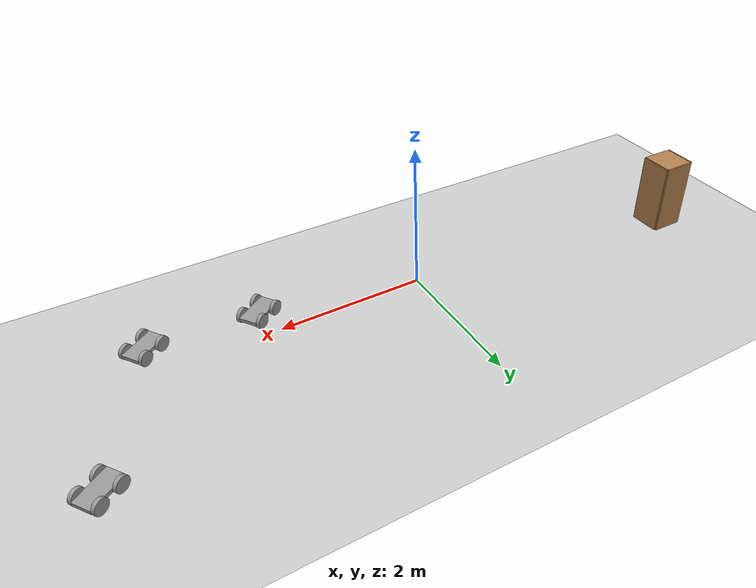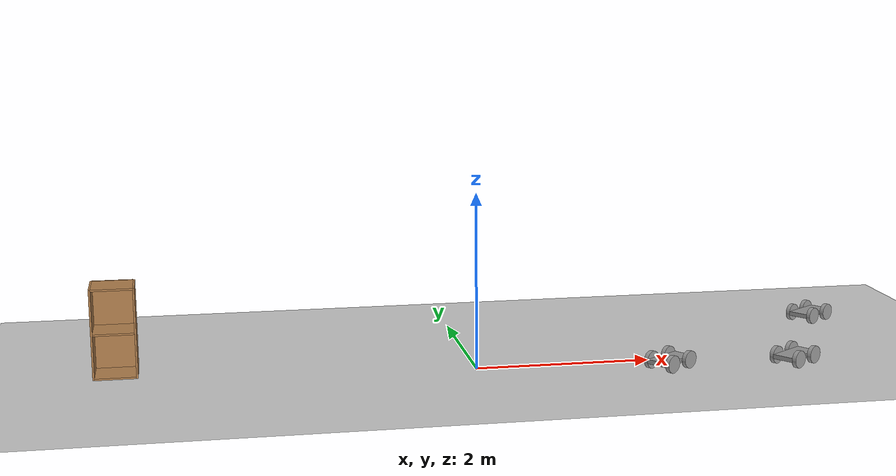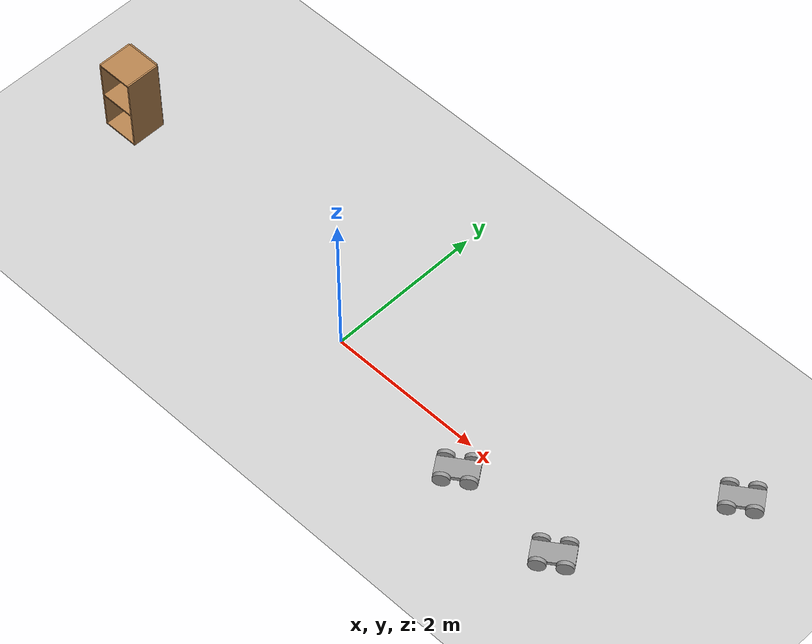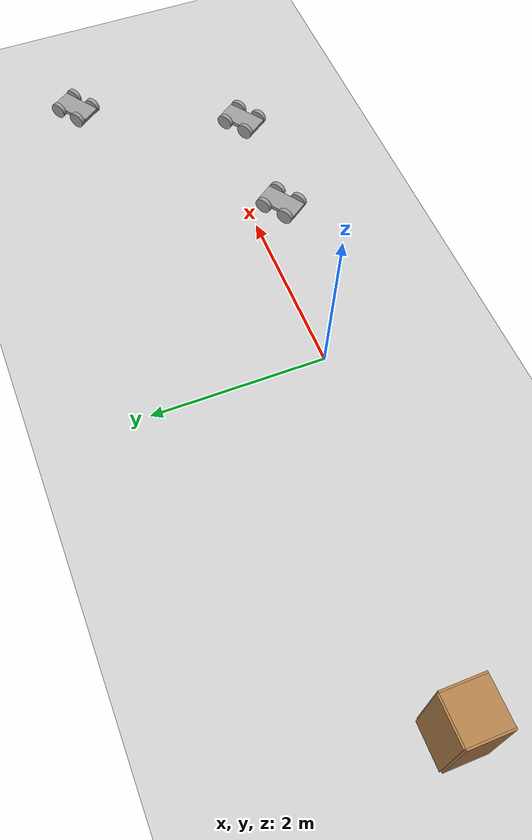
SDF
<sdf version="1.6">
 <world name="default">
  <model name="ground_plane">
   <static>1</static>
   <link name="link">
    <collision name="collision">
     <geometry><plane><normal>0 0 1</normal><size>100 100</size></plane></geometry>
     <surface>
      <contact><collide_bitmask>65535</collide_bitmask></contact>
      <friction><ode><mu>100</mu><mu2>50</mu2></ode></friction>
     </surface>
    </collision>
    <visual name="visual">
     <cast_shadows>0</cast_shadows>
     <geometry><plane><normal>0 0 1</normal><size>100 100</size></plane></geometry>
     <material>
      <script><uri>file://media/materials/scripts/gazebo.material</uri><name>Gazebo/Grey</name></script>
     </material>
    </visual>
   </link>
  </model>
  <model name="4_wheeled_platform_clone_clone_1">
   <link name="link_2">
    <inertial>
     <mass>1</mass>
     <inertia>
      <ixx>0.166667</ixx>
      <ixy>0</ixy>
      <ixz>0</ixz>
      <iyy>0.166667</iyy>
      <iyz>0</iyz>
      <izz>0.166667</izz>
     </inertia>
    </inertial>
    <pose>0.211313 0.477903 0 0 -0 0</pose>
    <visual name="visual">
     <geometry><box><size>0.5 0.25 0.05</size></box></geometry>
     <material>
      <lighting>1</lighting>
      <script><uri>file://media/materials/scripts/gazebo.material</uri><name>Gazebo/Grey</name></script>
      <shader type="vertex"><normal_map>__default__</normal_map></shader>
      <ambient>0.3 0.3 0.3 1</ambient>
      <diffuse>0.7 0.7 0.7 1</diffuse>
      <specular>0.01 0.01 0.01 1</specular>
      <emissive>0 0 0 1</emissive>
     </material>
    </visual>
    <collision name="collision">
     <geometry><box><size>0.5 0.25 0.05</size></box></geometry>
     <surface>
      <friction>
       <ode><mu>1</mu><mu2>1</mu2><fdir1>0 0 0</fdir1><slip1>0</slip1><slip2>0</slip2></ode>
       <torsional>
        <coefficient>1</coefficient>
        <patch_radius>0</patch_radius>
        <surface_radius>0</surface_radius>
        <use_patch_radius>1</use_patch_radius>
        <ode><slip>0</slip></ode>
       </torsional>
      </friction>
      <bounce><restitution_coefficient>0</restitution_coefficient><threshold>1e+06</threshold></bounce>
      <contact>
       <collide_without_contact>0</collide_without_contact>
       <collide_without_contact_bitmask>1</collide_without_contact_bitmask>
       <collide_bitmask>1</collide_bitmask>
       <ode>
        <soft_cfm>0</soft_cfm>
        <soft_erp>0.2</soft_erp>
        <kp>1e+13</kp>
        <kd>1</kd>
        <max_vel>0.01</max_vel>
        <min_depth>0</min_depth>
       </ode>
       <bullet>
        <split_impulse>1</split_impulse>
        <split_impulse_penetration_threshold>-0.01</split_impulse_penetration_threshold>
        <soft_cfm>0</soft_cfm>
        <soft_erp>0.2</soft_erp>
        <kp>1e+13</kp>
        <kd>1</kd>
       </bullet>
      </contact>
     </surface>
    </collision>
   </link>
   <link name="link_3">
    <inertial>
     <mass>1</mass>
     <inertia><ixx>0.145833</ixx><ixy>0</ixy><ixz>0</ixz><iyy>0.145833</iyy><iyz>0</iyz><izz>0.125</izz></inertia>
    </inertial>
    <pose>0.061313 0.327903 0 1.5707 -0 0</pose>
    <visual name="visual">
     <geometry><cylinder><radius>0.1</radius><length>0.05</length></cylinder></geometry>
     <material>
      <lighting>1</lighting>
      <script><uri>file://media/materials/scripts/gazebo.material</uri><name>Gazebo/Grey</name></script>
      <shader type="vertex"><normal_map>__default__</normal_map></shader>
      <ambient>0.3 0.3 0.3 1</ambient>
      <diffuse>0.7 0.7 0.7 1</diffuse>
      <specular>0.01 0.01 0.01 1</specular>
      <emissive>0 0 0 1</emissive>
     </material>
    </visual>
    <collision name="collision">
     <geometry><cylinder><radius>0.1</radius><length>0.05</length></cylinder></geometry>
     <surface>
      <friction>
       <ode><mu>1</mu><mu2>1</mu2><fdir1>0 0 0</fdir1><slip1>0</slip1><slip2>0</slip2></ode>
       <torsional>
        <coefficient>1</coefficient>
        <patch_radius>0</patch_radius>
        <surface_radius>0</surface_radius>
        <use_patch_radius>1</use_patch_radius>
        <ode><slip>0</slip></ode>
       </torsional>
      </friction>
      <bounce><restitution_coefficient>0</restitution_coefficient><threshold>1e+06</threshold></bounce>
      <contact>
       <collide_without_contact>0</collide_without_contact>
       <collide_without_contact_bitmask>1</collide_without_contact_bitmask>
       <collide_bitmask>1</collide_bitmask>
       <ode>
        <soft_cfm>0</soft_cfm>
        <soft_erp>0.2</soft_erp>
        <kp>1e+13</kp>
        <kd>1</kd>
        <max_vel>0.01</max_vel>
        <min_depth>0</min_depth>
       </ode>
       <bullet>
        <split_impulse>1</split_impulse>
        <split_impulse_penetration_threshold>-0.01</split_impulse_penetration_threshold>
        <soft_cfm>0</soft_cfm>
        <soft_erp>0.2</soft_erp>
        <kp>1e+13</kp>
        <kd>1</kd>
       </bullet>
      </contact>
     </surface>
    </collision>
   </link>
   <link name="link_3_clone">
    <inertial>
     <mass>1</mass>
     <inertia><ixx>0.145833</ixx><ixy>0</ixy><ixz>0</ixz><iyy>0.145833</iyy><iyz>0</iyz><izz>0.125</izz></inertia>
    </inertial>
    <pose>0.061313 0.627903 0 1.5707 -0 0</pose>
    <visual name="visual">
     <geometry><cylinder><radius>0.1</radius><length>0.05</length></cylinder></geometry>
     <material>
      <lighting>1</lighting>
      <script><uri>file://media/materials/scripts/gazebo.material</uri><name>Gazebo/Grey</name></script>
      <shader type="vertex"><normal_map>__default__</normal_map></shader>
      <ambient>0.3 0.3 0.3 1</ambient>
      <diffuse>0.7 0.7 0.7 1</diffuse>
      <specular>0.01 0.01 0.01 1</specular>
      <emissive>0 0 0 1</emissive>
     </material>
    </visual>
    <collision name="collision">
     <geometry><cylinder><radius>0.1</radius><length>0.05</length></cylinder></geometry>
     <surface>
      <friction>
       <ode><mu>1</mu><mu2>1</mu2><fdir1>0 0 0</fdir1><slip1>0</slip1><slip2>0</slip2></ode>
       <torsional>
        <coefficient>1</coefficient>
        <patch_radius>0</patch_radius>
        <surface_radius>0</surface_radius>
        <use_patch_radius>1</use_patch_radius>
        <ode><slip>0</slip></ode>
       </torsional>
      </friction>
      <bounce><restitution_coefficient>0</restitution_coefficient><threshold>1e+06</threshold></bounce>
      <contact>
       <collide_without_contact>0</collide_without_contact>
       <collide_without_contact_bitmask>1</collide_without_contact_bitmask>
       <collide_bitmask>1</collide_bitmask>
       <ode>
        <soft_cfm>0</soft_cfm>
        <soft_erp>0.2</soft_erp>
        <kp>1e+13</kp>
        <kd>1</kd>
        <max_vel>0.01</max_vel>
        <min_depth>0</min_depth>
       </ode>
       <bullet>
        <split_impulse>1</split_impulse>
        <split_impulse_penetration_threshold>-0.01</split_impulse_penetration_threshold>
        <soft_cfm>0</soft_cfm>
        <soft_erp>0.2</soft_erp>
        <kp>1e+13</kp>
        <kd>1</kd>
       </bullet>
      </contact>
     </surface>
    </collision>
   </link>
   <link name="link_3_clone_0">
    <inertial>
     <mass>1</mass>
     <inertia><ixx>0.145833</ixx><ixy>0</ixy><ixz>0</ixz><iyy>0.145833</iyy><iyz>0</iyz><izz>0.125</izz></inertia>
    </inertial>
    <pose>0.361313 0.627903 0 1.5707 -0 0</pose>
    <visual name="visual">
     <geometry><cylinder><radius>0.1</radius><length>0.05</length></cylinder></geometry>
     <material>
      <lighting>1</lighting>
      <script><uri>file://media/materials/scripts/gazebo.material</uri><name>Gazebo/Grey</name></script>
      <shader type="vertex"><normal_map>__default__</normal_map></shader>
      <ambient>0.3 0.3 0.3 1</ambient>
      <diffuse>0.7 0.7 0.7 1</diffuse>
      <specular>0.01 0.01 0.01 1</specular>
      <emissive>0 0 0 1</emissive>
     </material>
    </visual>
    <collision name="collision">
     <geometry><cylinder><radius>0.1</radius><length>0.05</length></cylinder></geometry>
     <surface>
      <friction>
       <ode><mu>1</mu><mu2>1</mu2><fdir1>0 0 0</fdir1><slip1>0</slip1><slip2>0</slip2></ode>
       <torsional>
        <coefficient>1</coefficient>
        <patch_radius>0</patch_radius>
        <surface_radius>0</surface_radius>
        <use_patch_radius>1</use_patch_radius>
        <ode><slip>0</slip></ode>
       </torsional>
      </friction>
      <bounce><restitution_coefficient>0</restitution_coefficient><threshold>1e+06</threshold></bounce>
      <contact>
       <collide_without_contact>0</collide_without_contact>
       <collide_without_contact_bitmask>1</collide_without_contact_bitmask>
       <collide_bitmask>1</collide_bitmask>
       <ode>
        <soft_cfm>0</soft_cfm>
        <soft_erp>0.2</soft_erp>
        <kp>1e+13</kp>
        <kd>1</kd>
        <max_vel>0.01</max_vel>
        <min_depth>0</min_depth>
       </ode>
       <bullet>
        <split_impulse>1</split_impulse>
        <split_impulse_penetration_threshold>-0.01</split_impulse_penetration_threshold>
        <soft_cfm>0</soft_cfm>
        <soft_erp>0.2</soft_erp>
        <kp>1e+13</kp>
        <kd>1</kd>
       </bullet>
      </contact>
     </surface>
    </collision>
   </link>
   <link name="link_3_clone_1">
    <inertial>
     <mass>1</mass>
     <inertia><ixx>0.145833</ixx><ixy>0</ixy><ixz>0</ixz><iyy>0.145833</iyy><iyz>0</iyz><izz>0.125</izz></inertia>
    </inertial>
    <pose>0.361313 0.327903 0 1.5707 -0 0</pose>
    <visual name="visual">
     <geometry><cylinder><radius>0.1</radius><length>0.05</length></cylinder></geometry>
     <material>
      <lighting>1</lighting>
      <script><uri>file://media/materials/scripts/gazebo.material</uri><name>Gazebo/Grey</name></script>
      <shader type="vertex"><normal_map>__default__</normal_map></shader>
      <ambient>0.3 0.3 0.3 1</ambient>
      <diffuse>0.7 0.7 0.7 1</diffuse>
      <specular>0.01 0.01 0.01 1</specular>
      <emissive>0 0 0 1</emissive>
     </material>
    </visual>
    <collision name="collision">
     <geometry><cylinder><radius>0.1</radius><length>0.05</length></cylinder></geometry>
     <surface>
      <friction>
       <ode><mu>1</mu><mu2>1</mu2><fdir1>0 0 0</fdir1><slip1>0</slip1><slip2>0</slip2></ode>
       <torsional>
        <coefficient>1</coefficient>
        <patch_radius>0</patch_radius>
        <surface_radius>0</surface_radius>
        <use_patch_radius>1</use_patch_radius>
        <ode><slip>0</slip></ode>
       </torsional>
      </friction>
      <bounce><restitution_coefficient>0</restitution_coefficient><threshold>1e+06</threshold></bounce>
      <contact>
       <collide_without_contact>0</collide_without_contact>
       <collide_without_contact_bitmask>1</collide_without_contact_bitmask>
       <collide_bitmask>1</collide_bitmask>
       <ode>
        <soft_cfm>0</soft_cfm>
        <soft_erp>0.2</soft_erp>
        <kp>1e+13</kp>
        <kd>1</kd>
        <max_vel>0.01</max_vel>
        <min_depth>0</min_depth>
       </ode>
       <bullet>
        <split_impulse>1</split_impulse>
        <split_impulse_penetration_threshold>-0.01</split_impulse_penetration_threshold>
        <soft_cfm>0</soft_cfm>
        <soft_erp>0.2</soft_erp>
        <kp>1e+13</kp>
        <kd>1</kd>
       </bullet>
      </contact>
     </surface>
    </collision>
   </link>
   <joint name="link_2_JOINT_6" type="revolute">
    <parent>link_2</parent>
    <child>link_3</child>
    <axis>
     <xyz>0 0 1</xyz>
     <use_parent_model_frame>0</use_parent_model_frame>
     <limit>
      <lower>-1.79769e+308</lower>
      <upper>1.79769e+308</upper>
      <effort>-1</effort>
      <velocity>-1</velocity>
     </limit>
     <dynamics>
      <spring_reference>0</spring_reference>
      <spring_stiffness>0</spring_stiffness>
      <damping>0</damping>
     </dynamics>
    </axis>
    <physics>
     <ode><limit><cfm>0</cfm><erp>0.2</erp></limit><suspension><cfm>0</cfm><erp>0.2</erp></suspension></ode>
    </physics>
   </joint>
   <joint name="link_2_JOINT_7" type="revolute">
    <parent>link_2</parent>
    <child>link_3_clone</child>
    <axis>
     <xyz>0 0 1</xyz>
     <use_parent_model_frame>0</use_parent_model_frame>
     <limit>
      <lower>-1.79769e+308</lower>
      <upper>1.79769e+308</upper>
      <effort>-1</effort>
      <velocity>-1</velocity>
     </limit>
     <dynamics>
      <spring_reference>0</spring_reference>
      <spring_stiffness>0</spring_stiffness>
      <damping>0</damping>
     </dynamics>
    </axis>
    <physics>
     <ode><limit><cfm>0</cfm><erp>0.2</erp></limit><suspension><cfm>0</cfm><erp>0.2</erp></suspension></ode>
    </physics>
   </joint>
   <joint name="link_2_JOINT_8" type="revolute">
    <parent>link_2</parent>
    <child>link_3_clone_0</child>
    <axis>
     <xyz>1 0 0</xyz>
     <use_parent_model_frame>0</use_parent_model_frame>
     <limit>
      <lower>-1.79769e+308</lower>
      <upper>1.79769e+308</upper>
      <effort>-1</effort>
      <velocity>-1</velocity>
     </limit>
     <dynamics>
      <spring_reference>0</spring_reference>
      <spring_stiffness>0</spring_stiffness>
      <damping>0</damping>
     </dynamics>
    </axis>
    <physics>
     <ode><limit><cfm>0</cfm><erp>0.2</erp></limit><suspension><cfm>0</cfm><erp>0.2</erp></suspension></ode>
    </physics>
   </joint>
   <joint name="link_2_JOINT_9" type="revolute">
    <parent>link_2</parent>
    <child>link_3_clone_1</child>
    <axis>
     <xyz>1 0 0</xyz>
     <use_parent_model_frame>0</use_parent_model_frame>
     <limit>
      <lower>-1.79769e+308</lower>
      <upper>1.79769e+308</upper>
      <effort>-1</effort>
      <velocity>-1</velocity>
     </limit>
     <dynamics>
      <spring_reference>0</spring_reference>
      <spring_stiffness>0</spring_stiffness>
      <damping>0</damping>
     </dynamics>
    </axis>
    <physics>
     <ode><limit><cfm>0</cfm><erp>0.2</erp></limit><suspension><cfm>0</cfm><erp>0.2</erp></suspension></ode>
    </physics>
   </joint>
   <static>0</static>
   <pose>2.24919 -0.888164 0.099996 -0 8e-06 0.606025</pose>
  </model>
  <model name="4_wheeled_platform_clone_clone_2">
   <link name="link_2">
    <inertial>
     <mass>1</mass>
     <inertia>
      <ixx>0.166667</ixx>
      <ixy>0</ixy>
      <ixz>0</ixz>
      <iyy>0.166667</iyy>
      <iyz>0</iyz>
      <izz>0.166667</izz>
     </inertia>
    </inertial>
    <pose>0.211313 0.477903 0 0 -0 0</pose>
    <visual name="visual">
     <geometry><box><size>0.5 0.25 0.05</size></box></geometry>
     <material>
      <lighting>1</lighting>
      <script><uri>file://media/materials/scripts/gazebo.material</uri><name>Gazebo/Grey</name></script>
      <shader type="vertex"><normal_map>__default__</normal_map></shader>
      <ambient>0.3 0.3 0.3 1</ambient>
      <diffuse>0.7 0.7 0.7 1</diffuse>
      <specular>0.01 0.01 0.01 1</specular>
      <emissive>0 0 0 1</emissive>
     </material>
    </visual>
    <collision name="collision">
     <geometry><box><size>0.5 0.25 0.05</size></box></geometry>
     <surface>
      <friction>
       <ode><mu>1</mu><mu2>1</mu2><fdir1>0 0 0</fdir1><slip1>0</slip1><slip2>0</slip2></ode>
       <torsional>
        <coefficient>1</coefficient>
        <patch_radius>0</patch_radius>
        <surface_radius>0</surface_radius>
        <use_patch_radius>1</use_patch_radius>
        <ode><slip>0</slip></ode>
       </torsional>
      </friction>
      <bounce><restitution_coefficient>0</restitution_coefficient><threshold>1e+06</threshold></bounce>
      <contact>
       <collide_without_contact>0</collide_without_contact>
       <collide_without_contact_bitmask>1</collide_without_contact_bitmask>
       <collide_bitmask>1</collide_bitmask>
       <ode>
        <soft_cfm>0</soft_cfm>
        <soft_erp>0.2</soft_erp>
        <kp>1e+13</kp>
        <kd>1</kd>
        <max_vel>0.01</max_vel>
        <min_depth>0</min_depth>
       </ode>
       <bullet>
        <split_impulse>1</split_impulse>
        <split_impulse_penetration_threshold>-0.01</split_impulse_penetration_threshold>
        <soft_cfm>0</soft_cfm>
        <soft_erp>0.2</soft_erp>
        <kp>1e+13</kp>
        <kd>1</kd>
       </bullet>
      </contact>
     </surface>
    </collision>
   </link>
   <link name="link_3">
    <inertial>
     <mass>1</mass>
     <inertia><ixx>0.145833</ixx><ixy>0</ixy><ixz>0</ixz><iyy>0.145833</iyy><iyz>0</iyz><izz>0.125</izz></inertia>
    </inertial>
    <pose>0.061313 0.327903 0 1.5707 -0 0</pose>
    <visual name="visual">
     <geometry><cylinder><radius>0.1</radius><length>0.05</length></cylinder></geometry>
     <material>
      <lighting>1</lighting>
      <script><uri>file://media/materials/scripts/gazebo.material</uri><name>Gazebo/Grey</name></script>
      <shader type="vertex"><normal_map>__default__</normal_map></shader>
      <ambient>0.3 0.3 0.3 1</ambient>
      <diffuse>0.7 0.7 0.7 1</diffuse>
      <specular>0.01 0.01 0.01 1</specular>
      <emissive>0 0 0 1</emissive>
     </material>
    </visual>
    <collision name="collision">
     <geometry><cylinder><radius>0.1</radius><length>0.05</length></cylinder></geometry>
     <surface>
      <friction>
       <ode><mu>1</mu><mu2>1</mu2><fdir1>0 0 0</fdir1><slip1>0</slip1><slip2>0</slip2></ode>
       <torsional>
        <coefficient>1</coefficient>
        <patch_radius>0</patch_radius>
        <surface_radius>0</surface_radius>
        <use_patch_radius>1</use_patch_radius>
        <ode><slip>0</slip></ode>
       </torsional>
      </friction>
      <bounce><restitution_coefficient>0</restitution_coefficient><threshold>1e+06</threshold></bounce>
      <contact>
       <collide_without_contact>0</collide_without_contact>
       <collide_without_contact_bitmask>1</collide_without_contact_bitmask>
       <collide_bitmask>1</collide_bitmask>
       <ode>
        <soft_cfm>0</soft_cfm>
        <soft_erp>0.2</soft_erp>
        <kp>1e+13</kp>
        <kd>1</kd>
        <max_vel>0.01</max_vel>
        <min_depth>0</min_depth>
       </ode>
       <bullet>
        <split_impulse>1</split_impulse>
        <split_impulse_penetration_threshold>-0.01</split_impulse_penetration_threshold>
        <soft_cfm>0</soft_cfm>
        <soft_erp>0.2</soft_erp>
        <kp>1e+13</kp>
        <kd>1</kd>
       </bullet>
      </contact>
     </surface>
    </collision>
   </link>
   <link name="link_3_clone">
    <inertial>
     <mass>1</mass>
     <inertia><ixx>0.145833</ixx><ixy>0</ixy><ixz>0</ixz><iyy>0.145833</iyy><iyz>0</iyz><izz>0.125</izz></inertia>
    </inertial>
    <pose>0.061313 0.627903 0 1.5707 -0 0</pose>
    <visual name="visual">
     <geometry><cylinder><radius>0.1</radius><length>0.05</length></cylinder></geometry>
     <material>
      <lighting>1</lighting>
      <script><uri>file://media/materials/scripts/gazebo.material</uri><name>Gazebo/Grey</name></script>
      <shader type="vertex"><normal_map>__default__</normal_map></shader>
      <ambient>0.3 0.3 0.3 1</ambient>
      <diffuse>0.7 0.7 0.7 1</diffuse>
      <specular>0.01 0.01 0.01 1</specular>
      <emissive>0 0 0 1</emissive>
     </material>
    </visual>
    <collision name="collision">
     <geometry><cylinder><radius>0.1</radius><length>0.05</length></cylinder></geometry>
     <surface>
      <friction>
       <ode><mu>1</mu><mu2>1</mu2><fdir1>0 0 0</fdir1><slip1>0</slip1><slip2>0</slip2></ode>
       <torsional>
        <coefficient>1</coefficient>
        <patch_radius>0</patch_radius>
        <surface_radius>0</surface_radius>
        <use_patch_radius>1</use_patch_radius>
        <ode><slip>0</slip></ode>
       </torsional>
      </friction>
      <bounce><restitution_coefficient>0</restitution_coefficient><threshold>1e+06</threshold></bounce>
      <contact>
       <collide_without_contact>0</collide_without_contact>
       <collide_without_contact_bitmask>1</collide_without_contact_bitmask>
       <collide_bitmask>1</collide_bitmask>
       <ode>
        <soft_cfm>0</soft_cfm>
        <soft_erp>0.2</soft_erp>
        <kp>1e+13</kp>
        <kd>1</kd>
        <max_vel>0.01</max_vel>
        <min_depth>0</min_depth>
       </ode>
       <bullet>
        <split_impulse>1</split_impulse>
        <split_impulse_penetration_threshold>-0.01</split_impulse_penetration_threshold>
        <soft_cfm>0</soft_cfm>
        <soft_erp>0.2</soft_erp>
        <kp>1e+13</kp>
        <kd>1</kd>
       </bullet>
      </contact>
     </surface>
    </collision>
   </link>
   <link name="link_3_clone_0">
    <inertial>
     <mass>1</mass>
     <inertia><ixx>0.145833</ixx><ixy>0</ixy><ixz>0</ixz><iyy>0.145833</iyy><iyz>0</iyz><izz>0.125</izz></inertia>
    </inertial>
    <pose>0.361313 0.627903 0 1.5707 -0 0</pose>
    <visual name="visual">
     <geometry><cylinder><radius>0.1</radius><length>0.05</length></cylinder></geometry>
     <material>
      <lighting>1</lighting>
      <script><uri>file://media/materials/scripts/gazebo.material</uri><name>Gazebo/Grey</name></script>
      <shader type="vertex"><normal_map>__default__</normal_map></shader>
      <ambient>0.3 0.3 0.3 1</ambient>
      <diffuse>0.7 0.7 0.7 1</diffuse>
      <specular>0.01 0.01 0.01 1</specular>
      <emissive>0 0 0 1</emissive>
     </material>
    </visual>
    <collision name="collision">
     <geometry><cylinder><radius>0.1</radius><length>0.05</length></cylinder></geometry>
     <surface>
      <friction>
       <ode><mu>1</mu><mu2>1</mu2><fdir1>0 0 0</fdir1><slip1>0</slip1><slip2>0</slip2></ode>
       <torsional>
        <coefficient>1</coefficient>
        <patch_radius>0</patch_radius>
        <surface_radius>0</surface_radius>
        <use_patch_radius>1</use_patch_radius>
        <ode><slip>0</slip></ode>
       </torsional>
      </friction>
      <bounce><restitution_coefficient>0</restitution_coefficient><threshold>1e+06</threshold></bounce>
      <contact>
       <collide_without_contact>0</collide_without_contact>
       <collide_without_contact_bitmask>1</collide_without_contact_bitmask>
       <collide_bitmask>1</collide_bitmask>
       <ode>
        <soft_cfm>0</soft_cfm>
        <soft_erp>0.2</soft_erp>
        <kp>1e+13</kp>
        <kd>1</kd>
        <max_vel>0.01</max_vel>
        <min_depth>0</min_depth>
       </ode>
       <bullet>
        <split_impulse>1</split_impulse>
        <split_impulse_penetration_threshold>-0.01</split_impulse_penetration_threshold>
        <soft_cfm>0</soft_cfm>
        <soft_erp>0.2</soft_erp>
        <kp>1e+13</kp>
        <kd>1</kd>
       </bullet>
      </contact>
     </surface>
    </collision>
   </link>
   <link name="link_3_clone_1">
    <inertial>
     <mass>1</mass>
     <inertia><ixx>0.145833</ixx><ixy>0</ixy><ixz>0</ixz><iyy>0.145833</iyy><iyz>0</iyz><izz>0.125</izz></inertia>
    </inertial>
    <pose>0.361313 0.327903 0 1.5707 -0 0</pose>
    <visual name="visual">
     <geometry><cylinder><radius>0.1</radius><length>0.05</length></cylinder></geometry>
     <material>
      <lighting>1</lighting>
      <script><uri>file://media/materials/scripts/gazebo.material</uri><name>Gazebo/Grey</name></script>
      <shader type="vertex"><normal_map>__default__</normal_map></shader>
      <ambient>0.3 0.3 0.3 1</ambient>
      <diffuse>0.7 0.7 0.7 1</diffuse>
      <specular>0.01 0.01 0.01 1</specular>
      <emissive>0 0 0 1</emissive>
     </material>
    </visual>
    <collision name="collision">
     <geometry><cylinder><radius>0.1</radius><length>0.05</length></cylinder></geometry>
     <surface>
      <friction>
       <ode><mu>1</mu><mu2>1</mu2><fdir1>0 0 0</fdir1><slip1>0</slip1><slip2>0</slip2></ode>
       <torsional>
        <coefficient>1</coefficient>
        <patch_radius>0</patch_radius>
        <surface_radius>0</surface_radius>
        <use_patch_radius>1</use_patch_radius>
        <ode><slip>0</slip></ode>
       </torsional>
      </friction>
      <bounce><restitution_coefficient>0</restitution_coefficient><threshold>1e+06</threshold></bounce>
      <contact>
       <collide_without_contact>0</collide_without_contact>
       <collide_without_contact_bitmask>1</collide_without_contact_bitmask>
       <collide_bitmask>1</collide_bitmask>
       <ode>
        <soft_cfm>0</soft_cfm>
        <soft_erp>0.2</soft_erp>
        <kp>1e+13</kp>
        <kd>1</kd>
        <max_vel>0.01</max_vel>
        <min_depth>0</min_depth>
       </ode>
       <bullet>
        <split_impulse>1</split_impulse>
        <split_impulse_penetration_threshold>-0.01</split_impulse_penetration_threshold>
        <soft_cfm>0</soft_cfm>
        <soft_erp>0.2</soft_erp>
        <kp>1e+13</kp>
        <kd>1</kd>
       </bullet>
      </contact>
     </surface>
    </collision>
   </link>
   <joint name="link_2_JOINT_6" type="revolute">
    <parent>link_2</parent>
    <child>link_3</child>
    <axis>
     <xyz>0 0 1</xyz>
     <use_parent_model_frame>0</use_parent_model_frame>
     <limit>
      <lower>-1.79769e+308</lower>
      <upper>1.79769e+308</upper>
      <effort>-1</effort>
      <velocity>-1</velocity>
     </limit>
     <dynamics>
      <spring_reference>0</spring_reference>
      <spring_stiffness>0</spring_stiffness>
      <damping>0</damping>
     </dynamics>
    </axis>
    <physics>
     <ode><limit><cfm>0</cfm><erp>0.2</erp></limit><suspension><cfm>0</cfm><erp>0.2</erp></suspension></ode>
    </physics>
   </joint>
   <joint name="link_2_JOINT_7" type="revolute">
    <parent>link_2</parent>
    <child>link_3_clone</child>
    <axis>
     <xyz>0 0 1</xyz>
     <use_parent_model_frame>0</use_parent_model_frame>
     <limit>
      <lower>-1.79769e+308</lower>
      <upper>1.79769e+308</upper>
      <effort>-1</effort>
      <velocity>-1</velocity>
     </limit>
     <dynamics>
      <spring_reference>0</spring_reference>
      <spring_stiffness>0</spring_stiffness>
      <damping>0</damping>
     </dynamics>
    </axis>
    <physics>
     <ode><limit><cfm>0</cfm><erp>0.2</erp></limit><suspension><cfm>0</cfm><erp>0.2</erp></suspension></ode>
    </physics>
   </joint>
   <joint name="link_2_JOINT_8" type="revolute">
    <parent>link_2</parent>
    <child>link_3_clone_0</child>
    <axis>
     <xyz>1 0 0</xyz>
     <use_parent_model_frame>0</use_parent_model_frame>
     <limit>
      <lower>-1.79769e+308</lower>
      <upper>1.79769e+308</upper>
      <effort>-1</effort>
      <velocity>-1</velocity>
     </limit>
     <dynamics>
      <spring_reference>0</spring_reference>
      <spring_stiffness>0</spring_stiffness>
      <damping>0</damping>
     </dynamics>
    </axis>
    <physics>
     <ode><limit><cfm>0</cfm><erp>0.2</erp></limit><suspension><cfm>0</cfm><erp>0.2</erp></suspension></ode>
    </physics>
   </joint>
   <joint name="link_2_JOINT_9" type="revolute">
    <parent>link_2</parent>
    <child>link_3_clone_1</child>
    <axis>
     <xyz>1 0 0</xyz>
     <use_parent_model_frame>0</use_parent_model_frame>
     <limit>
      <lower>-1.79769e+308</lower>
      <upper>1.79769e+308</upper>
      <effort>-1</effort>
      <velocity>-1</velocity>
     </limit>
     <dynamics>
      <spring_reference>0</spring_reference>
      <spring_stiffness>0</spring_stiffness>
      <damping>0</damping>
     </dynamics>
    </axis>
    <physics>
     <ode><limit><cfm>0</cfm><erp>0.2</erp></limit><suspension><cfm>0</cfm><erp>0.2</erp></suspension></ode>
    </physics>
   </joint>
   <static>0</static>
   <pose>4.65538 0.963762 0.1 0 8e-06 0.60589</pose>
  </model>
  <model name="4_wheeled_platform_clone_clone_3">
   <link name="link_2">
    <inertial>
     <mass>1</mass>
     <inertia>
      <ixx>0.166667</ixx>
      <ixy>0</ixy>
      <ixz>0</ixz>
      <iyy>0.166667</iyy>
      <iyz>0</iyz>
      <izz>0.166667</izz>
     </inertia>
    </inertial>
    <pose>0.211313 0.477903 0 0 -0 0</pose>
    <visual name="visual">
     <geometry><box><size>0.5 0.25 0.05</size></box></geometry>
     <material>
      <lighting>1</lighting>
      <script><uri>file://media/materials/scripts/gazebo.material</uri><name>Gazebo/Grey</name></script>
      <shader type="vertex"><normal_map>__default__</normal_map></shader>
      <ambient>0.3 0.3 0.3 1</ambient>
      <diffuse>0.7 0.7 0.7 1</diffuse>
      <specular>0.01 0.01 0.01 1</specular>
      <emissive>0 0 0 1</emissive>
     </material>
    </visual>
    <collision name="collision">
     <geometry><box><size>0.5 0.25 0.05</size></box></geometry>
     <surface>
      <friction>
       <ode><mu>1</mu><mu2>1</mu2><fdir1>0 0 0</fdir1><slip1>0</slip1><slip2>0</slip2></ode>
       <torsional>
        <coefficient>1</coefficient>
        <patch_radius>0</patch_radius>
        <surface_radius>0</surface_radius>
        <use_patch_radius>1</use_patch_radius>
        <ode><slip>0</slip></ode>
       </torsional>
      </friction>
      <bounce><restitution_coefficient>0</restitution_coefficient><threshold>1e+06</threshold></bounce>
      <contact>
       <collide_without_contact>0</collide_without_contact>
       <collide_without_contact_bitmask>1</collide_without_contact_bitmask>
       <collide_bitmask>1</collide_bitmask>
       <ode>
        <soft_cfm>0</soft_cfm>
        <soft_erp>0.2</soft_erp>
        <kp>1e+13</kp>
        <kd>1</kd>
        <max_vel>0.01</max_vel>
        <min_depth>0</min_depth>
       </ode>
       <bullet>
        <split_impulse>1</split_impulse>
        <split_impulse_penetration_threshold>-0.01</split_impulse_penetration_threshold>
        <soft_cfm>0</soft_cfm>
        <soft_erp>0.2</soft_erp>
        <kp>1e+13</kp>
        <kd>1</kd>
       </bullet>
      </contact>
     </surface>
    </collision>
   </link>
   <link name="link_3">
    <inertial>
     <mass>1</mass>
     <inertia><ixx>0.145833</ixx><ixy>0</ixy><ixz>0</ixz><iyy>0.145833</iyy><iyz>0</iyz><izz>0.125</izz></inertia>
    </inertial>
    <pose>0.061313 0.327903 0 1.5707 -0 0</pose>
    <visual name="visual">
     <geometry><cylinder><radius>0.1</radius><length>0.05</length></cylinder></geometry>
     <material>
      <lighting>1</lighting>
      <script><uri>file://media/materials/scripts/gazebo.material</uri><name>Gazebo/Grey</name></script>
      <shader type="vertex"><normal_map>__default__</normal_map></shader>
      <ambient>0.3 0.3 0.3 1</ambient>
      <diffuse>0.7 0.7 0.7 1</diffuse>
      <specular>0.01 0.01 0.01 1</specular>
      <emissive>0 0 0 1</emissive>
     </material>
    </visual>
    <collision name="collision">
     <geometry><cylinder><radius>0.1</radius><length>0.05</length></cylinder></geometry>
     <surface>
      <friction>
       <ode><mu>1</mu><mu2>1</mu2><fdir1>0 0 0</fdir1><slip1>0</slip1><slip2>0</slip2></ode>
       <torsional>
        <coefficient>1</coefficient>
        <patch_radius>0</patch_radius>
        <surface_radius>0</surface_radius>
        <use_patch_radius>1</use_patch_radius>
        <ode><slip>0</slip></ode>
       </torsional>
      </friction>
      <bounce><restitution_coefficient>0</restitution_coefficient><threshold>1e+06</threshold></bounce>
      <contact>
       <collide_without_contact>0</collide_without_contact>
       <collide_without_contact_bitmask>1</collide_without_contact_bitmask>
       <collide_bitmask>1</collide_bitmask>
       <ode>
        <soft_cfm>0</soft_cfm>
        <soft_erp>0.2</soft_erp>
        <kp>1e+13</kp>
        <kd>1</kd>
        <max_vel>0.01</max_vel>
        <min_depth>0</min_depth>
       </ode>
       <bullet>
        <split_impulse>1</split_impulse>
        <split_impulse_penetration_threshold>-0.01</split_impulse_penetration_threshold>
        <soft_cfm>0</soft_cfm>
        <soft_erp>0.2</soft_erp>
        <kp>1e+13</kp>
        <kd>1</kd>
       </bullet>
      </contact>
     </surface>
    </collision>
   </link>
   <link name="link_3_clone">
    <inertial>
     <mass>1</mass>
     <inertia><ixx>0.145833</ixx><ixy>0</ixy><ixz>0</ixz><iyy>0.145833</iyy><iyz>0</iyz><izz>0.125</izz></inertia>
    </inertial>
    <pose>0.061313 0.627903 0 1.5707 -0 0</pose>
    <visual name="visual">
     <geometry><cylinder><radius>0.1</radius><length>0.05</length></cylinder></geometry>
     <material>
      <lighting>1</lighting>
      <script><uri>file://media/materials/scripts/gazebo.material</uri><name>Gazebo/Grey</name></script>
      <shader type="vertex"><normal_map>__default__</normal_map></shader>
      <ambient>0.3 0.3 0.3 1</ambient>
      <diffuse>0.7 0.7 0.7 1</diffuse>
      <specular>0.01 0.01 0.01 1</specular>
      <emissive>0 0 0 1</emissive>
     </material>
    </visual>
    <collision name="collision">
     <geometry><cylinder><radius>0.1</radius><length>0.05</length></cylinder></geometry>
     <surface>
      <friction>
       <ode><mu>1</mu><mu2>1</mu2><fdir1>0 0 0</fdir1><slip1>0</slip1><slip2>0</slip2></ode>
       <torsional>
        <coefficient>1</coefficient>
        <patch_radius>0</patch_radius>
        <surface_radius>0</surface_radius>
        <use_patch_radius>1</use_patch_radius>
        <ode><slip>0</slip></ode>
       </torsional>
      </friction>
      <bounce><restitution_coefficient>0</restitution_coefficient><threshold>1e+06</threshold></bounce>
      <contact>
       <collide_without_contact>0</collide_without_contact>
       <collide_without_contact_bitmask>1</collide_without_contact_bitmask>
       <collide_bitmask>1</collide_bitmask>
       <ode>
        <soft_cfm>0</soft_cfm>
        <soft_erp>0.2</soft_erp>
        <kp>1e+13</kp>
        <kd>1</kd>
        <max_vel>0.01</max_vel>
        <min_depth>0</min_depth>
       </ode>
       <bullet>
        <split_impulse>1</split_impulse>
        <split_impulse_penetration_threshold>-0.01</split_impulse_penetration_threshold>
        <soft_cfm>0</soft_cfm>
        <soft_erp>0.2</soft_erp>
        <kp>1e+13</kp>
        <kd>1</kd>
       </bullet>
      </contact>
     </surface>
    </collision>
   </link>
   <link name="link_3_clone_0">
    <inertial>
     <mass>1</mass>
     <inertia><ixx>0.145833</ixx><ixy>0</ixy><ixz>0</ixz><iyy>0.145833</iyy><iyz>0</iyz><izz>0.125</izz></inertia>
    </inertial>
    <pose>0.361313 0.627903 0 1.5707 -0 0</pose>
    <visual name="visual">
     <geometry><cylinder><radius>0.1</radius><length>0.05</length></cylinder></geometry>
     <material>
      <lighting>1</lighting>
      <script><uri>file://media/materials/scripts/gazebo.material</uri><name>Gazebo/Grey</name></script>
      <shader type="vertex"><normal_map>__default__</normal_map></shader>
      <ambient>0.3 0.3 0.3 1</ambient>
      <diffuse>0.7 0.7 0.7 1</diffuse>
      <specular>0.01 0.01 0.01 1</specular>
      <emissive>0 0 0 1</emissive>
     </material>
    </visual>
    <collision name="collision">
     <geometry><cylinder><radius>0.1</radius><length>0.05</length></cylinder></geometry>
     <surface>
      <friction>
       <ode><mu>1</mu><mu2>1</mu2><fdir1>0 0 0</fdir1><slip1>0</slip1><slip2>0</slip2></ode>
       <torsional>
        <coefficient>1</coefficient>
        <patch_radius>0</patch_radius>
        <surface_radius>0</surface_radius>
        <use_patch_radius>1</use_patch_radius>
        <ode><slip>0</slip></ode>
       </torsional>
      </friction>
      <bounce><restitution_coefficient>0</restitution_coefficient><threshold>1e+06</threshold></bounce>
      <contact>
       <collide_without_contact>0</collide_without_contact>
       <collide_without_contact_bitmask>1</collide_without_contact_bitmask>
       <collide_bitmask>1</collide_bitmask>
       <ode>
        <soft_cfm>0</soft_cfm>
        <soft_erp>0.2</soft_erp>
        <kp>1e+13</kp>
        <kd>1</kd>
        <max_vel>0.01</max_vel>
        <min_depth>0</min_depth>
       </ode>
       <bullet>
        <split_impulse>1</split_impulse>
        <split_impulse_penetration_threshold>-0.01</split_impulse_penetration_threshold>
        <soft_cfm>0</soft_cfm>
        <soft_erp>0.2</soft_erp>
        <kp>1e+13</kp>
        <kd>1</kd>
       </bullet>
      </contact>
     </surface>
    </collision>
   </link>
   <link name="link_3_clone_1">
    <inertial>
     <mass>1</mass>
     <inertia><ixx>0.145833</ixx><ixy>0</ixy><ixz>0</ixz><iyy>0.145833</iyy><iyz>0</iyz><izz>0.125</izz></inertia>
    </inertial>
    <pose>0.361313 0.327903 0 1.5707 -0 0</pose>
    <visual name="visual">
     <geometry><cylinder><radius>0.1</radius><length>0.05</length></cylinder></geometry>
     <material>
      <lighting>1</lighting>
      <script><uri>file://media/materials/scripts/gazebo.material</uri><name>Gazebo/Grey</name></script>
      <shader type="vertex"><normal_map>__default__</normal_map></shader>
      <ambient>0.3 0.3 0.3 1</ambient>
      <diffuse>0.7 0.7 0.7 1</diffuse>
      <specular>0.01 0.01 0.01 1</specular>
      <emissive>0 0 0 1</emissive>
     </material>
    </visual>
    <collision name="collision">
     <geometry><cylinder><radius>0.1</radius><length>0.05</length></cylinder></geometry>
     <surface>
      <friction>
       <ode><mu>1</mu><mu2>1</mu2><fdir1>0 0 0</fdir1><slip1>0</slip1><slip2>0</slip2></ode>
       <torsional>
        <coefficient>1</coefficient>
        <patch_radius>0</patch_radius>
        <surface_radius>0</surface_radius>
        <use_patch_radius>1</use_patch_radius>
        <ode><slip>0</slip></ode>
       </torsional>
      </friction>
      <bounce><restitution_coefficient>0</restitution_coefficient><threshold>1e+06</threshold></bounce>
      <contact>
       <collide_without_contact>0</collide_without_contact>
       <collide_without_contact_bitmask>1</collide_without_contact_bitmask>
       <collide_bitmask>1</collide_bitmask>
       <ode>
        <soft_cfm>0</soft_cfm>
        <soft_erp>0.2</soft_erp>
        <kp>1e+13</kp>
        <kd>1</kd>
        <max_vel>0.01</max_vel>
        <min_depth>0</min_depth>
       </ode>
       <bullet>
        <split_impulse>1</split_impulse>
        <split_impulse_penetration_threshold>-0.01</split_impulse_penetration_threshold>
        <soft_cfm>0</soft_cfm>
        <soft_erp>0.2</soft_erp>
        <kp>1e+13</kp>
        <kd>1</kd>
       </bullet>
      </contact>
     </surface>
    </collision>
   </link>
   <joint name="link_2_JOINT_6" type="revolute">
    <parent>link_2</parent>
    <child>link_3</child>
    <axis>
     <xyz>0 0 1</xyz>
     <use_parent_model_frame>0</use_parent_model_frame>
     <limit>
      <lower>-1.79769e+308</lower>
      <upper>1.79769e+308</upper>
      <effort>-1</effort>
      <velocity>-1</velocity>
     </limit>
     <dynamics>
      <spring_reference>0</spring_reference>
      <spring_stiffness>0</spring_stiffness>
      <damping>0</damping>
     </dynamics>
    </axis>
    <physics>
     <ode><limit><cfm>0</cfm><erp>0.2</erp></limit><suspension><cfm>0</cfm><erp>0.2</erp></suspension></ode>
    </physics>
   </joint>
   <joint name="link_2_JOINT_7" type="revolute">
    <parent>link_2</parent>
    <child>link_3_clone</child>
    <axis>
     <xyz>0 0 1</xyz>
     <use_parent_model_frame>0</use_parent_model_frame>
     <limit>
      <lower>-1.79769e+308</lower>
      <upper>1.79769e+308</upper>
      <effort>-1</effort>
      <velocity>-1</velocity>
     </limit>
     <dynamics>
      <spring_reference>0</spring_reference>
      <spring_stiffness>0</spring_stiffness>
      <damping>0</damping>
     </dynamics>
    </axis>
    <physics>
     <ode><limit><cfm>0</cfm><erp>0.2</erp></limit><suspension><cfm>0</cfm><erp>0.2</erp></suspension></ode>
    </physics>
   </joint>
   <joint name="link_2_JOINT_8" type="revolute">
    <parent>link_2</parent>
    <child>link_3_clone_0</child>
    <axis>
     <xyz>1 0 0</xyz>
     <use_parent_model_frame>0</use_parent_model_frame>
     <limit>
      <lower>-1.79769e+308</lower>
      <upper>1.79769e+308</upper>
      <effort>-1</effort>
      <velocity>-1</velocity>
     </limit>
     <dynamics>
      <spring_reference>0</spring_reference>
      <spring_stiffness>0</spring_stiffness>
      <damping>0</damping>
     </dynamics>
    </axis>
    <physics>
     <ode><limit><cfm>0</cfm><erp>0.2</erp></limit><suspension><cfm>0</cfm><erp>0.2</erp></suspension></ode>
    </physics>
   </joint>
   <joint name="link_2_JOINT_9" type="revolute">
    <parent>link_2</parent>
    <child>link_3_clone_1</child>
    <axis>
     <xyz>1 0 0</xyz>
     <use_parent_model_frame>0</use_parent_model_frame>
     <limit>
      <lower>-1.79769e+308</lower>
      <upper>1.79769e+308</upper>
      <effort>-1</effort>
      <velocity>-1</velocity>
     </limit>
     <dynamics>
      <spring_reference>0</spring_reference>
      <spring_stiffness>0</spring_stiffness>
      <damping>0</damping>
     </dynamics>
    </axis>
    <physics>
     <ode><limit><cfm>0</cfm><erp>0.2</erp></limit><suspension><cfm>0</cfm><erp>0.2</erp></suspension></ode>
    </physics>
   </joint>
   <static>0</static>
   <pose>3.71154 -0.952143 0.100003 0 8e-06 0.609616</pose>
  </model>
  <model name="cabinet_clone_1">
   <static>1</static>
   <link name="cabinet_bottom_plate">
    <inertial>
     <pose>0 0 -1 0 -0 0</pose>
     <inertia><ixx>2.05</ixx><ixy>0</ixy><ixz>0</ixz><iyy>2.05</iyy><iyz>0</iyz><izz>2.05</izz></inertia>
     <mass>25</mass>
    </inertial>
    <collision name="cabinet_bottom_plate_geom">
     <pose>0 0 0.01 0 -0 0</pose>
     <geometry><box><size>0.45 0.45 0.02</size></box></geometry>
    </collision>
    <visual name="cabinet_bottom_plate_geom_visual">
     <pose>0 0 0.01 0 -0 0</pose>
     <geometry><box><size>0.45 0.45 0.02</size></box></geometry>
     <material>
      <script><uri>file://media/materials/scripts/gazebo.material</uri><name>Gazebo/Wood</name></script>
     </material>
    </visual>
    <collision name="cabinet_bottom_plate_geom_cabinet_back_plate">
     <pose>0.235 0 0.51 0 -0 0</pose>
     <geometry><box><size>0.02 0.45 1.02</size></box></geometry>
    </collision>
    <visual name="cabinet_bottom_plate_geom_cabinet_back_plate_visual">
     <pose>0.235 0 0.51 0 -0 0</pose>
     <geometry><box><size>0.02 0.45 1.02</size></box></geometry>
     <material>
      <script><uri>file://media/materials/scripts/gazebo.material</uri><name>Gazebo/Wood</name></script>
     </material>
    </visual>
    <collision name="cabinet_bottom_plate_geom_cabinet_left_plate">
     <pose>0 0.235 0.51 0 -0 0</pose>
     <geometry><box><size>0.45 0.02 1.02</size></box></geometry>
    </collision>
    <visual name="cabinet_bottom_plate_geom_cabinet_left_plate_visual">
     <pose>0 0.235 0.51 0 -0 0</pose>
     <geometry><box><size>0.45 0.02 1.02</size></box></geometry>
     <material>
      <script><uri>file://media/materials/scripts/gazebo.material</uri><name>Gazebo/Wood</name></script>
     </material>
    </visual>
    <collision name="cabinet_bottom_plate_geom_cabinet_middle_plate">
     <pose>0 0 0.51 0 -0 0</pose>
     <geometry><box><size>0.45 0.45 0.02</size></box></geometry>
    </collision>
    <visual name="cabinet_bottom_plate_geom_cabinet_middle_plate_visual">
     <pose>0 0 0.51 0 -0 0</pose>
     <geometry><box><size>0.45 0.45 0.02</size></box></geometry>
     <material>
      <script><uri>file://media/materials/scripts/gazebo.material</uri><name>Gazebo/Wood</name></script>
     </material>
    </visual>
    <collision name="cabinet_bottom_plate_geom_cabinet_right_plate">
     <pose>0 -0.235 0.51 0 -0 0</pose>
     <geometry><box><size>0.45 0.02 1.02</size></box></geometry>
    </collision>
    <visual name="cabinet_bottom_plate_geom_cabinet_right_plate_visual">
     <pose>0 -0.235 0.51 0 -0 0</pose>
     <geometry><box><size>0.45 0.02 1.02</size></box></geometry>
     <material>
      <script><uri>file://media/materials/scripts/gazebo.material</uri><name>Gazebo/Wood</name></script>
     </material>
    </visual>
    <collision name="cabinet_bottom_plate_geom_cabinet_top_plate">
     <pose>0 0 1.01 0 -0 0</pose>
     <geometry><box><size>0.45 0.45 0.02</size></box></geometry>
    </collision>
    <visual name="cabinet_bottom_plate_geom_cabinet_top_plate_visual">
     <pose>0 0 1.01 0 -0 0</pose>
     <geometry><box><size>0.45 0.45 0.02</size></box></geometry>
     <material>
      <script><uri>file://media/materials/scripts/gazebo.material</uri><name>Gazebo/Wood</name></script>
     </material>
    </visual>
   </link>
   <pose>-3.97575 0.536684 0 0 -0 1.57</pose>
  </model>
 </world>
</sdf>
